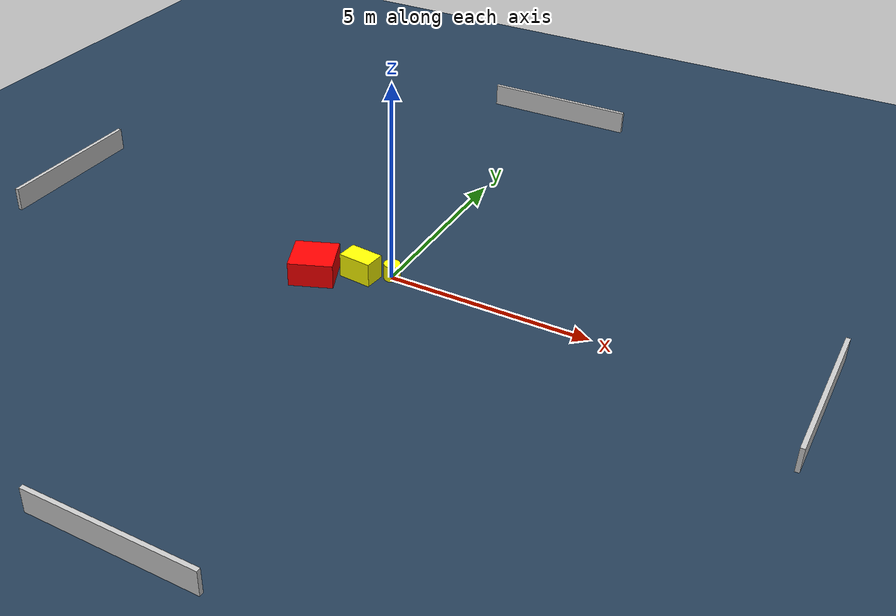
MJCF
<?xml version="1.0" ?>
<mujoco model="generated_environment">
  <option timestep="0.01" integrator="RK4" cone="elliptic"/>
  <default>
    <geom density="1"/>
  </default>
  <asset>
    <texture builtin="gradient" height="3072" name="skybox" rgb1="0.3 0.5 0.7" rgb2="0 0 0" type="skybox" width="512"/>
    <texture builtin="checker" height="300" name="groundplane" rgb1="0.2 0.3 0.4" rgb2="0.1 0.2 0.3" type="2d" width="300"/>
    <material name="groundplane" reflectance="0.2" texrepeat="5 5" texture="groundplane"/>
  </asset>
  <worldbody>
    <light dir="0 0 -1" directional="true" pos="0 0 1.5"/>
    <geom condim="3" friction="0.5 0.005 0.001" material="groundplane" name="floor" pos="0 0 0" size="0 0 0.05" type="plane"/>
    <body name="walls">
      <geom name="wall_1" condim="4" pos="-10.0 0.0 0.3" rgba="0.800000011920929 0.800000011920929 0.800000011920929 1.0" size="0.05 2.0 0.3" type="box"/>
      <geom name="wall_2" condim="4" pos="10.0 0.0 0.3" rgba="0.800000011920929 0.800000011920929 0.800000011920929 1.0" size="0.05 2.0 0.3" type="box"/>
      <geom name="wall_3" condim="4" pos="0.0 -10.0 0.3" rgba="0.800000011920929 0.800000011920929 0.800000011920929 1.0" size="2.0 0.05 0.3" type="box"/>
      <geom name="wall_4" condim="4" pos="0.0 10.0 0.3" rgba="0.800000011920929 0.800000011920929 0.800000011920929 1.0" size="2.0 0.05 0.3" type="box"/>
    </body>
    <body name="robot">
      <joint name="joint_x" type="slide" pos="0 0 0" axis="1 0 0"/>
      <joint name="joint_y" type="slide" pos="0 0 0" axis="0 1 0"/>
      <geom name="robot" type="cylinder" pos="0.0 0.0 0.2" size="0.2 0.2 0.0" mass="5.0" friction="1.0 0.005 0.0001" condim="4" rgba="1.0 1.0 0.0 1.0"/>
    </body>
    <body name="obstacle_1_movable">
      <geom name="obstacle_1_movable" condim="4" pos="-0.6778032921330739 -0.30945433546104845 0.3" euler="0 0 84.1596568349943" friction="0.0 0.005 0.001" rgba="1.0 1.0 0.0 1.0" size="0.2626064970032867 0.4160809594543241 0.3" type="box" mass="0.1"/>
      <joint type="free"/>
    </body>
    <body name="obstacle_2_static">
      <geom name="obstacle_2_static" condim="4" pos="-1.6686853989793966 -0.8028925177015366 0.3" euler="0 0 112.12771277643219" friction="0.0 0.005 0.001" rgba="1.0 0.0 0.0 1.0" size="0.5195571915185593 0.5352780893664035 0.3" type="box"/>
    </body>
  </worldbody>
  <actuator>
    <motor name="actuator_x" joint="joint_x" gear="1" ctrlrange="-1 1"/>
    <motor name="actuator_y" joint="joint_y" gear="1" ctrlrange="-1 1"/>
  </actuator>
</mujoco>
